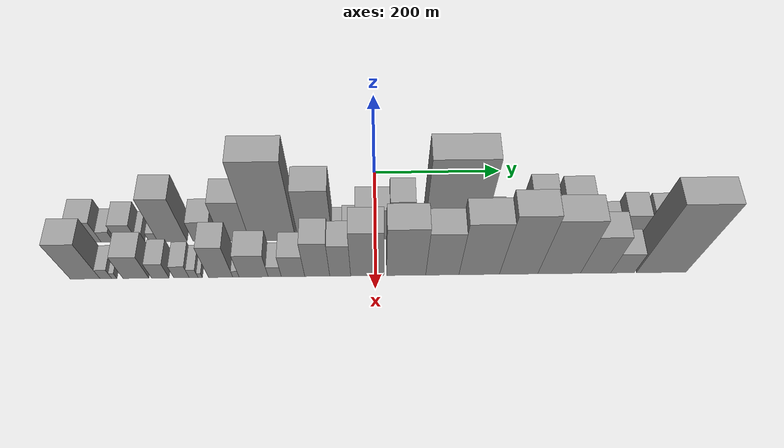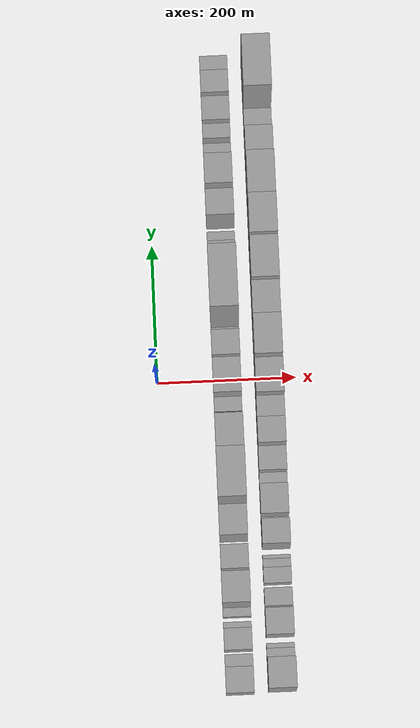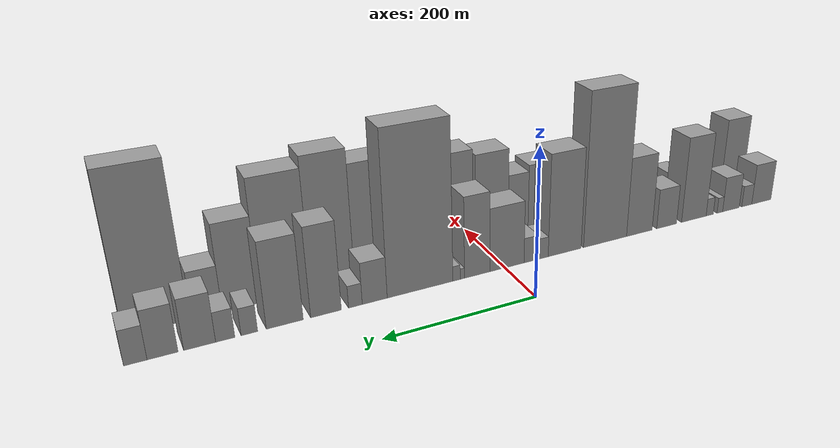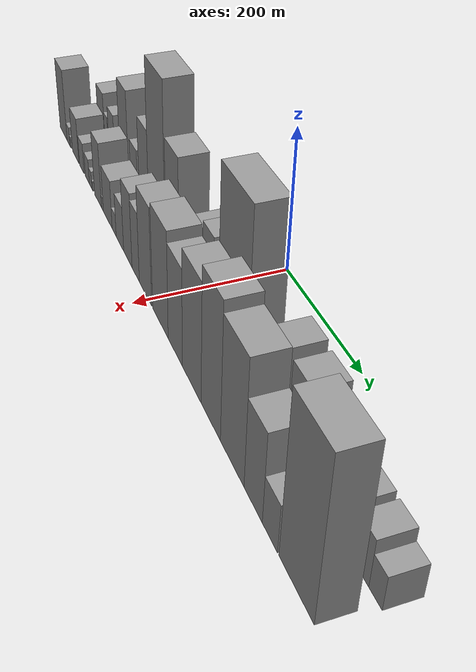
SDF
<sdf version="1.6">
 <world name="default">
  <scene>
   <sky><clouds><speed>12</speed></clouds></sky>
   <ambient>0.4 0.4 0.4 1</ambient>
   <background>0.7 0.7 0.7 1</background>
   <shadows>1</shadows>
  </scene>
  <gravity>0 0 -9.8066</gravity>
  <magnetic_field>6e-06 2.3e-05 -4.2e-05</magnetic_field>
  <physics default="0" name="default_physics" type="ode">
   <ode>
    <solver>
     <type>quick</type>
     <iters>10</iters>
     <sor>1.0</sor>
     <use_dynamic_moi_rescaling>0</use_dynamic_moi_rescaling>
    </solver>
    <constraints>
     <cfm>0</cfm>
     <erp>0.2</erp>
     <contact_max_correcting_vel>100</contact_max_correcting_vel>
     <contact_surface_layer>0.001</contact_surface_layer>
    </constraints>
   </ode>
   <max_step_size>0.004</max_step_size>
   <real_time_factor>1</real_time_factor>
   <real_time_update_rate>250</real_time_update_rate>
  </physics>
  <light name="sun" type="directional">
   <pose>0 0 10 0 0 0</pose>
   <diffuse>0.8 0.8 0.8 1</diffuse>
   <specular>0.2 0.2 0.2 1</specular>
   <attenuation>
    <range>1000</range>
    <constant>0.9</constant>
    <linear>0.01</linear>
    <quadratic>0.001</quadratic>
   </attenuation>
   <direction>-0.5 0.1 -0.9</direction>
  </light>
  <model name="building_1">
   <static>1</static>
   <pose>100.0000 -434.3449 0 0.000000 0.000000 0.000000</pose>
   <link name="link">
    <pose>0 0 31.50 0 0 0</pose>
    <collision name="collision"><geometry><box><size>40.0000 37.3102 63.0000</size></box></geometry></collision>
    <visual name="visual">
     <cast_shadows>0</cast_shadows>
     <geometry><box><size>40.0000 37.3102 63.0000</size></box></geometry>
     <material>
      <script>
       <uri>model://grey_wall/materials/scripts</uri>
       <uri>model://grey_wall/materials/textures</uri>
       <name>vrc/grey_wall</name>
      </script>
     </material>
    </visual>
   </link>
  </model>
  <model name="building_2">
   <static>1</static>
   <pose>100.0000 -406.1732 0 0.000000 0.000000 0.000000</pose>
   <link name="link">
    <pose>0 0 16.50 0 0 0</pose>
    <collision name="collision"><geometry><box><size>40.0000 19.0332 33.0000</size></box></geometry></collision>
    <visual name="visual">
     <cast_shadows>0</cast_shadows>
     <geometry><box><size>40.0000 19.0332 33.0000</size></box></geometry>
     <material>
      <script>
       <uri>model://grey_wall/materials/scripts</uri>
       <uri>model://grey_wall/materials/textures</uri>
       <name>vrc/grey_wall</name>
      </script>
     </material>
    </visual>
   </link>
  </model>
  <model name="building_3">
   <static>1</static>
   <pose>100.0000 -376.0543 0 0.000000 0.000000 0.000000</pose>
   <link name="link">
    <pose>0 0 27.00 0 0 0</pose>
    <collision name="collision"><geometry><box><size>40.0000 31.2046 54.0000</size></box></geometry></collision>
    <visual name="visual">
     <cast_shadows>0</cast_shadows>
     <geometry><box><size>40.0000 31.2046 54.0000</size></box></geometry>
     <material>
      <script>
       <uri>model://grey_wall/materials/scripts</uri>
       <uri>model://grey_wall/materials/textures</uri>
       <name>vrc/grey_wall</name>
      </script>
     </material>
    </visual>
   </link>
  </model>
  <model name="building_4">
   <static>1</static>
   <pose>100.0000 -355.2624 0 0.000000 0.000000 0.000000</pose>
   <link name="link">
    <pose>0 0 12.00 0 0 0</pose>
    <collision name="collision"><geometry><box><size>40.0000 10.3794 24.0000</size></box></geometry></collision>
    <visual name="visual">
     <cast_shadows>0</cast_shadows>
     <geometry><box><size>40.0000 10.3794 24.0000</size></box></geometry>
     <material>
      <script>
       <uri>model://grey_wall/materials/scripts</uri>
       <uri>model://grey_wall/materials/textures</uri>
       <name>vrc/grey_wall</name>
      </script>
     </material>
    </visual>
   </link>
  </model>
  <model name="building_5">
   <static>1</static>
   <pose>100.0000 -336.4891 0 0.000000 0.000000 0.000000</pose>
   <link name="link">
    <pose>0 0 13.50 0 0 0</pose>
    <collision name="collision"><geometry><box><size>40.0000 13.1672 27.0000</size></box></geometry></collision>
    <visual name="visual">
     <cast_shadows>0</cast_shadows>
     <geometry><box><size>40.0000 13.1672 27.0000</size></box></geometry>
     <material>
      <script>
       <uri>model://grey_wall/materials/scripts</uri>
       <uri>model://grey_wall/materials/textures</uri>
       <name>vrc/grey_wall</name>
      </script>
     </material>
    </visual>
   </link>
  </model>
  <model name="building_6">
   <static>1</static>
   <pose>100.0000 -307.7441 0 0.000000 0.000000 0.000000</pose>
   <link name="link">
    <pose>0 0 64.50 0 0 0</pose>
    <collision name="collision"><geometry><box><size>40.0000 44.3227 129.0000</size></box></geometry></collision>
    <visual name="visual">
     <cast_shadows>0</cast_shadows>
     <geometry><box><size>40.0000 44.3227 129.0000</size></box></geometry>
     <material>
      <script>
       <uri>model://grey_wall/materials/scripts</uri>
       <uri>model://grey_wall/materials/textures</uri>
       <name>vrc/grey_wall</name>
      </script>
     </material>
    </visual>
   </link>
  </model>
  <model name="building_7">
   <static>1</static>
   <pose>100.0000 -259.3126 0 0.000000 0.000000 0.000000</pose>
   <link name="link">
    <pose>0 0 30.00 0 0 0</pose>
    <collision name="collision"><geometry><box><size>40.0000 34.5403 60.0000</size></box></geometry></collision>
    <visual name="visual">
     <cast_shadows>0</cast_shadows>
     <geometry><box><size>40.0000 34.5403 60.0000</size></box></geometry>
     <material>
      <script>
       <uri>model://grey_wall/materials/scripts</uri>
       <uri>model://grey_wall/materials/textures</uri>
       <name>vrc/grey_wall</name>
      </script>
     </material>
    </visual>
   </link>
  </model>
  <model name="building_8">
   <static>1</static>
   <pose>100.0000 -212.3424 0 0.000000 0.000000 0.000000</pose>
   <link name="link">
    <pose>0 0 58.50 0 0 0</pose>
    <collision name="collision"><geometry><box><size>40.0000 43.4000 117.0000</size></box></geometry></collision>
    <visual name="visual">
     <cast_shadows>0</cast_shadows>
     <geometry><box><size>40.0000 43.4000 117.0000</size></box></geometry>
     <material>
      <script>
       <uri>model://grey_wall/materials/scripts</uri>
       <uri>model://grey_wall/materials/textures</uri>
       <name>vrc/grey_wall</name>
      </script>
     </material>
    </visual>
   </link>
  </model>
  <model name="building_9">
   <static>1</static>
   <pose>100.0000 -155.5357 0 0.000000 0.000000 0.000000</pose>
   <link name="link">
    <pose>0 0 111.00 0 0 0</pose>
    <collision name="collision"><geometry><box><size>40.0000 70.2134 222.0000</size></box></geometry></collision>
    <visual name="visual">
     <cast_shadows>0</cast_shadows>
     <geometry><box><size>40.0000 70.2134 222.0000</size></box></geometry>
     <material>
      <script>
       <uri>model://grey_wall/materials/scripts</uri>
       <uri>model://grey_wall/materials/textures</uri>
       <name>vrc/grey_wall</name>
      </script>
     </material>
    </visual>
   </link>
  </model>
  <model name="building_10">
   <static>1</static>
   <pose>100.0000 -90.7002 0 0.000000 0.000000 0.000000</pose>
   <link name="link">
    <pose>0 0 73.50 0 0 0</pose>
    <collision name="collision"><geometry><box><size>40.0000 51.4577 147.0000</size></box></geometry></collision>
    <visual name="visual">
     <cast_shadows>0</cast_shadows>
     <geometry><box><size>40.0000 51.4577 147.0000</size></box></geometry>
     <material>
      <script>
       <uri>model://grey_wall/materials/scripts</uri>
       <uri>model://grey_wall/materials/textures</uri>
       <name>vrc/grey_wall</name>
      </script>
     </material>
    </visual>
   </link>
  </model>
  <model name="building_11">
   <static>1</static>
   <pose>100.0000 -57.3428 0 0.000000 0.000000 0.000000</pose>
   <link name="link">
    <pose>0 0 15.00 0 0 0</pose>
    <collision name="collision"><geometry><box><size>40.0000 15.2571 30.0000</size></box></geometry></collision>
    <visual name="visual">
     <cast_shadows>0</cast_shadows>
     <geometry><box><size>40.0000 15.2571 30.0000</size></box></geometry>
     <material>
      <script>
       <uri>model://grey_wall/materials/scripts</uri>
       <uri>model://grey_wall/materials/textures</uri>
       <name>vrc/grey_wall</name>
      </script>
     </material>
    </visual>
   </link>
  </model>
  <model name="building_12">
   <static>1</static>
   <pose>100.0000 -38.9881 0 0.000000 0.000000 0.000000</pose>
   <link name="link">
    <pose>0 0 18.00 0 0 0</pose>
    <collision name="collision"><geometry><box><size>40.0000 21.4522 36.0000</size></box></geometry></collision>
    <visual name="visual">
     <cast_shadows>0</cast_shadows>
     <geometry><box><size>40.0000 21.4522 36.0000</size></box></geometry>
     <material>
      <script>
       <uri>model://grey_wall/materials/scripts</uri>
       <uri>model://grey_wall/materials/textures</uri>
       <name>vrc/grey_wall</name>
      </script>
     </material>
    </visual>
   </link>
  </model>
  <model name="building_13">
   <static>1</static>
   <pose>100.0000 -3.1126 0 0.000000 0.000000 0.000000</pose>
   <link name="link">
    <pose>0 0 45.00 0 0 0</pose>
    <collision name="collision"><geometry><box><size>40.0000 50.2988 90.0000</size></box></geometry></collision>
    <visual name="visual">
     <cast_shadows>0</cast_shadows>
     <geometry><box><size>40.0000 50.2988 90.0000</size></box></geometry>
     <material>
      <script>
       <uri>model://grey_wall/materials/scripts</uri>
       <uri>model://grey_wall/materials/textures</uri>
       <name>vrc/grey_wall</name>
      </script>
     </material>
    </visual>
   </link>
  </model>
  <model name="building_14">
   <static>1</static>
   <pose>100.0000 40.1000 0 0.000000 0.000000 0.000000</pose>
   <link name="link">
    <pose>0 0 57.00 0 0 0</pose>
    <collision name="collision"><geometry><box><size>40.0000 36.1264 114.0000</size></box></geometry></collision>
    <visual name="visual">
     <cast_shadows>0</cast_shadows>
     <geometry><box><size>40.0000 36.1264 114.0000</size></box></geometry>
     <material>
      <script>
       <uri>model://grey_wall/materials/scripts</uri>
       <uri>model://grey_wall/materials/textures</uri>
       <name>vrc/grey_wall</name>
      </script>
     </material>
    </visual>
   </link>
  </model>
  <model name="building_15">
   <static>1</static>
   <pose>100.0000 61.1861 0 0.000000 0.000000 0.000000</pose>
   <link name="link">
    <pose>0 0 7.50 0 0 0</pose>
    <collision name="collision"><geometry><box><size>40.0000 6.0458 15.0000</size></box></geometry></collision>
    <visual name="visual">
     <cast_shadows>0</cast_shadows>
     <geometry><box><size>40.0000 6.0458 15.0000</size></box></geometry>
     <material>
      <script>
       <uri>model://grey_wall/materials/scripts</uri>
       <uri>model://grey_wall/materials/textures</uri>
       <name>vrc/grey_wall</name>
      </script>
     </material>
    </visual>
   </link>
  </model>
  <model name="building_16">
   <static>1</static>
   <pose>100.0000 69.3125 0 0.000000 0.000000 0.000000</pose>
   <link name="link">
    <pose>0 0 10.50 0 0 0</pose>
    <collision name="collision"><geometry><box><size>40.0000 10.2069 21.0000</size></box></geometry></collision>
    <visual name="visual">
     <cast_shadows>0</cast_shadows>
     <geometry><box><size>40.0000 10.2069 21.0000</size></box></geometry>
     <material>
      <script>
       <uri>model://grey_wall/materials/scripts</uri>
       <uri>model://grey_wall/materials/textures</uri>
       <name>vrc/grey_wall</name>
      </script>
     </material>
    </visual>
   </link>
  </model>
  <model name="building_17">
   <static>1</static>
   <pose>100.0000 118.7404 0 0.000000 0.000000 0.000000</pose>
   <link name="link">
    <pose>0 0 111.00 0 0 0</pose>
    <collision name="collision"><geometry><box><size>40.0000 88.6490 222.0000</size></box></geometry></collision>
    <visual name="visual">
     <cast_shadows>0</cast_shadows>
     <geometry><box><size>40.0000 88.6490 222.0000</size></box></geometry>
     <material>
      <script>
       <uri>model://grey_wall/materials/scripts</uri>
       <uri>model://grey_wall/materials/textures</uri>
       <name>vrc/grey_wall</name>
      </script>
     </material>
    </visual>
   </link>
  </model>
  <model name="building_18">
   <static>1</static>
   <pose>100.0000 179.1369 0 0.000000 0.000000 0.000000</pose>
   <link name="link">
    <pose>0 0 28.50 0 0 0</pose>
    <collision name="collision"><geometry><box><size>40.0000 32.1441 57.0000</size></box></geometry></collision>
    <visual name="visual">
     <cast_shadows>0</cast_shadows>
     <geometry><box><size>40.0000 32.1441 57.0000</size></box></geometry>
     <material>
      <script>
       <uri>model://grey_wall/materials/scripts</uri>
       <uri>model://grey_wall/materials/textures</uri>
       <name>vrc/grey_wall</name>
      </script>
     </material>
    </visual>
   </link>
  </model>
  <model name="building_19">
   <static>1</static>
   <pose>100.0000 203.8925 0 0.000000 0.000000 0.000000</pose>
   <link name="link">
    <pose>0 0 15.00 0 0 0</pose>
    <collision name="collision"><geometry><box><size>40.0000 17.3670 30.0000</size></box></geometry></collision>
    <visual name="visual">
     <cast_shadows>0</cast_shadows>
     <geometry><box><size>40.0000 17.3670 30.0000</size></box></geometry>
     <material>
      <script>
       <uri>model://grey_wall/materials/scripts</uri>
       <uri>model://grey_wall/materials/textures</uri>
       <name>vrc/grey_wall</name>
      </script>
     </material>
    </visual>
   </link>
  </model>
  <model name="building_20">
   <static>1</static>
   <pose>100.0000 240.4520 0 0.000000 0.000000 0.000000</pose>
   <link name="link">
    <pose>0 0 60.00 0 0 0</pose>
    <collision name="collision"><geometry><box><size>40.0000 37.7521 120.0000</size></box></geometry></collision>
    <visual name="visual">
     <cast_shadows>0</cast_shadows>
     <geometry><box><size>40.0000 37.7521 120.0000</size></box></geometry>
     <material>
      <script>
       <uri>model://grey_wall/materials/scripts</uri>
       <uri>model://grey_wall/materials/textures</uri>
       <name>vrc/grey_wall</name>
      </script>
     </material>
    </visual>
   </link>
  </model>
  <model name="building_21">
   <static>1</static>
   <pose>100.0000 290.1901 0 0.000000 0.000000 0.000000</pose>
   <link name="link">
    <pose>0 0 57.00 0 0 0</pose>
    <collision name="collision"><geometry><box><size>40.0000 43.7241 114.0000</size></box></geometry></collision>
    <visual name="visual">
     <cast_shadows>0</cast_shadows>
     <geometry><box><size>40.0000 43.7241 114.0000</size></box></geometry>
     <material>
      <script>
       <uri>model://grey_wall/materials/scripts</uri>
       <uri>model://grey_wall/materials/textures</uri>
       <name>vrc/grey_wall</name>
      </script>
     </material>
    </visual>
   </link>
  </model>
  <model name="building_22">
   <static>1</static>
   <pose>100.0000 331.5649 0 0.000000 0.000000 0.000000</pose>
   <link name="link">
    <pose>0 0 18.00 0 0 0</pose>
    <collision name="collision"><geometry><box><size>40.0000 19.0254 36.0000</size></box></geometry></collision>
    <visual name="visual">
     <cast_shadows>0</cast_shadows>
     <geometry><box><size>40.0000 19.0254 36.0000</size></box></geometry>
     <material>
      <script>
       <uri>model://grey_wall/materials/scripts</uri>
       <uri>model://grey_wall/materials/textures</uri>
       <name>vrc/grey_wall</name>
      </script>
     </material>
    </visual>
   </link>
  </model>
  <model name="building_23">
   <static>1</static>
   <pose>100.0000 358.8681 0 0.000000 0.000000 0.000000</pose>
   <link name="link">
    <pose>0 0 19.50 0 0 0</pose>
    <collision name="collision"><geometry><box><size>40.0000 21.5811 39.0000</size></box></geometry></collision>
    <visual name="visual">
     <cast_shadows>0</cast_shadows>
     <geometry><box><size>40.0000 21.5811 39.0000</size></box></geometry>
     <material>
      <script>
       <uri>model://grey_wall/materials/scripts</uri>
       <uri>model://grey_wall/materials/textures</uri>
       <name>vrc/grey_wall</name>
      </script>
     </material>
    </visual>
   </link>
  </model>
  <model name="building_24">
   <static>1</static>
   <pose>100.0000 387.1846 0 0.000000 0.000000 0.000000</pose>
   <link name="link">
    <pose>0 0 33.00 0 0 0</pose>
    <collision name="collision"><geometry><box><size>40.0000 35.0521 66.0000</size></box></geometry></collision>
    <visual name="visual">
     <cast_shadows>0</cast_shadows>
     <geometry><box><size>40.0000 35.0521 66.0000</size></box></geometry>
     <material>
      <script>
       <uri>model://grey_wall/materials/scripts</uri>
       <uri>model://grey_wall/materials/textures</uri>
       <name>vrc/grey_wall</name>
      </script>
     </material>
    </visual>
   </link>
  </model>
  <model name="building_25">
   <static>1</static>
   <pose>100.0000 427.1415 0 0.000000 0.000000 0.000000</pose>
   <link name="link">
    <pose>0 0 31.50 0 0 0</pose>
    <collision name="collision"><geometry><box><size>40.0000 32.8618 63.0000</size></box></geometry></collision>
    <visual name="visual">
     <cast_shadows>0</cast_shadows>
     <geometry><box><size>40.0000 32.8618 63.0000</size></box></geometry>
     <material>
      <script>
       <uri>model://grey_wall/materials/scripts</uri>
       <uri>model://grey_wall/materials/textures</uri>
       <name>vrc/grey_wall</name>
      </script>
     </material>
    </visual>
   </link>
  </model>
  <model name="building_26">
   <static>1</static>
   <pose>100.0000 455.7737 0 0.000000 0.000000 0.000000</pose>
   <link name="link">
    <pose>0 0 22.50 0 0 0</pose>
    <collision name="collision"><geometry><box><size>40.0000 24.4026 45.0000</size></box></geometry></collision>
    <visual name="visual">
     <cast_shadows>0</cast_shadows>
     <geometry><box><size>40.0000 24.4026 45.0000</size></box></geometry>
     <material>
      <script>
       <uri>model://grey_wall/materials/scripts</uri>
       <uri>model://grey_wall/materials/textures</uri>
       <name>vrc/grey_wall</name>
      </script>
     </material>
    </visual>
   </link>
  </model>
  <model name="building_27">
   <static>1</static>
   <pose>160.0000 -429.0702 0 0.000000 0.000000 0.000000</pose>
   <link name="link">
    <pose>0 0 57.00 0 0 0</pose>
    <collision name="collision"><geometry><box><size>40.0000 43.8596 114.0000</size></box></geometry></collision>
    <visual name="visual">
     <cast_shadows>0</cast_shadows>
     <geometry><box><size>40.0000 43.8596 114.0000</size></box></geometry>
     <material>
      <script>
       <uri>model://grey_wall/materials/scripts</uri>
       <uri>model://grey_wall/materials/textures</uri>
       <name>vrc/grey_wall</name>
      </script>
     </material>
    </visual>
   </link>
  </model>
  <model name="building_28">
   <static>1</static>
   <pose>160.0000 -398.5017 0 0.000000 0.000000 0.000000</pose>
   <link name="link">
    <pose>0 0 15.00 0 0 0</pose>
    <collision name="collision"><geometry><box><size>40.0000 17.2774 30.0000</size></box></geometry></collision>
    <visual name="visual">
     <cast_shadows>0</cast_shadows>
     <geometry><box><size>40.0000 17.2774 30.0000</size></box></geometry>
     <material>
      <script>
       <uri>model://grey_wall/materials/scripts</uri>
       <uri>model://grey_wall/materials/textures</uri>
       <name>vrc/grey_wall</name>
      </script>
     </material>
    </visual>
   </link>
  </model>
  <model name="building_29">
   <static>1</static>
   <pose>160.0000 -386.0668 0 0.000000 0.000000 0.000000</pose>
   <link name="link">
    <pose>0 0 9.00 0 0 0</pose>
    <collision name="collision"><geometry><box><size>40.0000 7.5922 18.0000</size></box></geometry></collision>
    <visual name="visual">
     <cast_shadows>0</cast_shadows>
     <geometry><box><size>40.0000 7.5922 18.0000</size></box></geometry>
     <material>
      <script>
       <uri>model://grey_wall/materials/scripts</uri>
       <uri>model://grey_wall/materials/textures</uri>
       <name>vrc/grey_wall</name>
      </script>
     </material>
    </visual>
   </link>
  </model>
  <model name="building_30">
   <static>1</static>
   <pose>160.0000 -354.2220 0 0.000000 0.000000 0.000000</pose>
   <link name="link">
    <pose>0 0 36.00 0 0 0</pose>
    <collision name="collision"><geometry><box><size>40.0000 38.0973 72.0000</size></box></geometry></collision>
    <visual name="visual">
     <cast_shadows>0</cast_shadows>
     <geometry><box><size>40.0000 38.0973 72.0000</size></box></geometry>
     <material>
      <script>
       <uri>model://grey_wall/materials/scripts</uri>
       <uri>model://grey_wall/materials/textures</uri>
       <name>vrc/grey_wall</name>
      </script>
     </material>
    </visual>
   </link>
  </model>
  <model name="building_31">
   <static>1</static>
   <pose>160.0000 -318.2275 0 0.000000 0.000000 0.000000</pose>
   <link name="link">
    <pose>0 0 24.00 0 0 0</pose>
    <collision name="collision"><geometry><box><size>40.0000 25.8917 48.0000</size></box></geometry></collision>
    <visual name="visual">
     <cast_shadows>0</cast_shadows>
     <geometry><box><size>40.0000 25.8917 48.0000</size></box></geometry>
     <material>
      <script>
       <uri>model://grey_wall/materials/scripts</uri>
       <uri>model://grey_wall/materials/textures</uri>
       <name>vrc/grey_wall</name>
      </script>
     </material>
    </visual>
   </link>
  </model>
  <model name="building_32">
   <static>1</static>
   <pose>160.0000 -286.8710 0 0.000000 0.000000 0.000000</pose>
   <link name="link">
    <pose>0 0 19.50 0 0 0</pose>
    <collision name="collision"><geometry><box><size>40.0000 22.8214 39.0000</size></box></geometry></collision>
    <visual name="visual">
     <cast_shadows>0</cast_shadows>
     <geometry><box><size>40.0000 22.8214 39.0000</size></box></geometry>
     <material>
      <script>
       <uri>model://grey_wall/materials/scripts</uri>
       <uri>model://grey_wall/materials/textures</uri>
       <name>vrc/grey_wall</name>
      </script>
     </material>
    </visual>
   </link>
  </model>
  <model name="building_33">
   <static>1</static>
   <pose>160.0000 -268.9408 0 0.000000 0.000000 0.000000</pose>
   <link name="link">
    <pose>0 0 13.50 0 0 0</pose>
    <collision name="collision"><geometry><box><size>40.0000 13.0389 27.0000</size></box></geometry></collision>
    <visual name="visual">
     <cast_shadows>0</cast_shadows>
     <geometry><box><size>40.0000 13.0389 27.0000</size></box></geometry>
     <material>
      <script>
       <uri>model://grey_wall/materials/scripts</uri>
       <uri>model://grey_wall/materials/textures</uri>
       <name>vrc/grey_wall</name>
      </script>
     </material>
    </visual>
   </link>
  </model>
  <model name="building_34">
   <static>1</static>
   <pose>160.0000 -259.2228 0 0.000000 0.000000 0.000000</pose>
   <link name="link">
    <pose>0 0 7.50 0 0 0</pose>
    <collision name="collision"><geometry><box><size>40.0000 6.3972 15.0000</size></box></geometry></collision>
    <visual name="visual">
     <cast_shadows>0</cast_shadows>
     <geometry><box><size>40.0000 6.3972 15.0000</size></box></geometry>
     <material>
      <script>
       <uri>model://grey_wall/materials/scripts</uri>
       <uri>model://grey_wall/materials/textures</uri>
       <name>vrc/grey_wall</name>
      </script>
     </material>
    </visual>
   </link>
  </model>
  <model name="building_35">
   <static>1</static>
   <pose>160.0000 -229.0551 0 0.000000 0.000000 0.000000</pose>
   <link name="link">
    <pose>0 0 49.50 0 0 0</pose>
    <collision name="collision"><geometry><box><size>40.0000 35.9382 99.0000</size></box></geometry></collision>
    <visual name="visual">
     <cast_shadows>0</cast_shadows>
     <geometry><box><size>40.0000 35.9382 99.0000</size></box></geometry>
     <material>
      <script>
       <uri>model://grey_wall/materials/scripts</uri>
       <uri>model://grey_wall/materials/textures</uri>
       <name>vrc/grey_wall</name>
      </script>
     </material>
    </visual>
   </link>
  </model>
  <model name="building_36">
   <static>1</static>
   <pose>160.0000 -206.4405 0 0.000000 0.000000 0.000000</pose>
   <link name="link">
    <pose>0 0 10.50 0 0 0</pose>
    <collision name="collision"><geometry><box><size>40.0000 9.2910 21.0000</size></box></geometry></collision>
    <visual name="visual">
     <cast_shadows>0</cast_shadows>
     <geometry><box><size>40.0000 9.2910 21.0000</size></box></geometry>
     <material>
      <script>
       <uri>model://grey_wall/materials/scripts</uri>
       <uri>model://grey_wall/materials/textures</uri>
       <name>vrc/grey_wall</name>
      </script>
     </material>
    </visual>
   </link>
  </model>
  <model name="building_37">
   <static>1</static>
   <pose>160.0000 -180.2395 0 0.000000 0.000000 0.000000</pose>
   <link name="link">
    <pose>0 0 36.00 0 0 0</pose>
    <collision name="collision"><geometry><box><size>40.0000 43.1109 72.0000</size></box></geometry></collision>
    <visual name="visual">
     <cast_shadows>0</cast_shadows>
     <geometry><box><size>40.0000 43.1109 72.0000</size></box></geometry>
     <material>
      <script>
       <uri>model://grey_wall/materials/scripts</uri>
       <uri>model://grey_wall/materials/textures</uri>
       <name>vrc/grey_wall</name>
      </script>
     </material>
    </visual>
   </link>
  </model>
  <model name="building_38">
   <static>1</static>
   <pose>160.0000 -149.0144 0 0.000000 0.000000 0.000000</pose>
   <link name="link">
    <pose>0 0 16.50 0 0 0</pose>
    <collision name="collision"><geometry><box><size>40.0000 19.3393 33.0000</size></box></geometry></collision>
    <visual name="visual">
     <cast_shadows>0</cast_shadows>
     <geometry><box><size>40.0000 19.3393 33.0000</size></box></geometry>
     <material>
      <script>
       <uri>model://grey_wall/materials/scripts</uri>
       <uri>model://grey_wall/materials/textures</uri>
       <name>vrc/grey_wall</name>
      </script>
     </material>
    </visual>
   </link>
  </model>
  <model name="building_39">
   <static>1</static>
   <pose>160.0000 -122.0366 0 0.000000 0.000000 0.000000</pose>
   <link name="link">
    <pose>0 0 33.00 0 0 0</pose>
    <collision name="collision"><geometry><box><size>40.0000 34.6164 66.0000</size></box></geometry></collision>
    <visual name="visual">
     <cast_shadows>0</cast_shadows>
     <geometry><box><size>40.0000 34.6164 66.0000</size></box></geometry>
     <material>
      <script>
       <uri>model://grey_wall/materials/scripts</uri>
       <uri>model://grey_wall/materials/textures</uri>
       <name>vrc/grey_wall</name>
      </script>
     </material>
    </visual>
   </link>
  </model>
  <model name="building_40">
   <static>1</static>
   <pose>160.0000 -86.2194 0 0.000000 0.000000 0.000000</pose>
   <link name="link">
    <pose>0 0 54.00 0 0 0</pose>
    <collision name="collision"><geometry><box><size>40.0000 37.0180 108.0000</size></box></geometry></collision>
    <visual name="visual">
     <cast_shadows>0</cast_shadows>
     <geometry><box><size>40.0000 37.0180 108.0000</size></box></geometry>
     <material>
      <script>
       <uri>model://grey_wall/materials/scripts</uri>
       <uri>model://grey_wall/materials/textures</uri>
       <name>vrc/grey_wall</name>
      </script>
     </material>
    </visual>
   </link>
  </model>
  <model name="building_41">
   <static>1</static>
   <pose>160.0000 -52.2447 0 0.000000 0.000000 0.000000</pose>
   <link name="link">
    <pose>0 0 49.50 0 0 0</pose>
    <collision name="collision"><geometry><box><size>40.0000 30.9315 99.0000</size></box></geometry></collision>
    <visual name="visual">
     <cast_shadows>0</cast_shadows>
     <geometry><box><size>40.0000 30.9315 99.0000</size></box></geometry>
     <material>
      <script>
       <uri>model://grey_wall/materials/scripts</uri>
       <uri>model://grey_wall/materials/textures</uri>
       <name>vrc/grey_wall</name>
      </script>
     </material>
    </visual>
   </link>
  </model>
  <model name="building_42">
   <static>1</static>
   <pose>160.0000 -12.1193 0 0.000000 0.000000 0.000000</pose>
   <link name="link">
    <pose>0 0 69.00 0 0 0</pose>
    <collision name="collision"><geometry><box><size>40.0000 49.3192 138.0000</size></box></geometry></collision>
    <visual name="visual">
     <cast_shadows>0</cast_shadows>
     <geometry><box><size>40.0000 49.3192 138.0000</size></box></geometry>
     <material>
      <script>
       <uri>model://grey_wall/materials/scripts</uri>
       <uri>model://grey_wall/materials/textures</uri>
       <name>vrc/grey_wall</name>
      </script>
     </material>
    </visual>
   </link>
  </model>
  <model name="building_43">
   <static>1</static>
   <pose>160.0000 45.4589 0 0.000000 0.000000 0.000000</pose>
   <link name="link">
    <pose>0 0 73.50 0 0 0</pose>
    <collision name="collision"><geometry><box><size>40.0000 57.8371 147.0000</size></box></geometry></collision>
    <visual name="visual">
     <cast_shadows>0</cast_shadows>
     <geometry><box><size>40.0000 57.8371 147.0000</size></box></geometry>
     <material>
      <script>
       <uri>model://grey_wall/materials/scripts</uri>
       <uri>model://grey_wall/materials/textures</uri>
       <name>vrc/grey_wall</name>
      </script>
     </material>
    </visual>
   </link>
  </model>
  <model name="building_44">
   <static>1</static>
   <pose>160.0000 99.0367 0 0.000000 0.000000 0.000000</pose>
   <link name="link">
    <pose>0 0 66.00 0 0 0</pose>
    <collision name="collision"><geometry><box><size>40.0000 49.3185 132.0000</size></box></geometry></collision>
    <visual name="visual">
     <cast_shadows>0</cast_shadows>
     <geometry><box><size>40.0000 49.3185 132.0000</size></box></geometry>
     <material>
      <script>
       <uri>model://grey_wall/materials/scripts</uri>
       <uri>model://grey_wall/materials/textures</uri>
       <name>vrc/grey_wall</name>
      </script>
     </material>
    </visual>
   </link>
  </model>
  <model name="building_45">
   <static>1</static>
   <pose>160.0000 153.7312 0 0.000000 0.000000 0.000000</pose>
   <link name="link">
    <pose>0 0 79.50 0 0 0</pose>
    <collision name="collision"><geometry><box><size>40.0000 60.0704 159.0000</size></box></geometry></collision>
    <visual name="visual">
     <cast_shadows>0</cast_shadows>
     <geometry><box><size>40.0000 60.0704 159.0000</size></box></geometry>
     <material>
      <script>
       <uri>model://grey_wall/materials/scripts</uri>
       <uri>model://grey_wall/materials/textures</uri>
       <name>vrc/grey_wall</name>
      </script>
     </material>
    </visual>
   </link>
  </model>
  <model name="building_46">
   <static>1</static>
   <pose>160.0000 212.2501 0 0.000000 0.000000 0.000000</pose>
   <link name="link">
    <pose>0 0 90.00 0 0 0</pose>
    <collision name="collision"><geometry><box><size>40.0000 56.9674 180.0000</size></box></geometry></collision>
    <visual name="visual">
     <cast_shadows>0</cast_shadows>
     <geometry><box><size>40.0000 56.9674 180.0000</size></box></geometry>
     <material>
      <script>
       <uri>model://grey_wall/materials/scripts</uri>
       <uri>model://grey_wall/materials/textures</uri>
       <name>vrc/grey_wall</name>
      </script>
     </material>
    </visual>
   </link>
  </model>
  <model name="building_47">
   <static>1</static>
   <pose>160.0000 272.5267 0 0.000000 0.000000 0.000000</pose>
   <link name="link">
    <pose>0 0 82.50 0 0 0</pose>
    <collision name="collision"><geometry><box><size>40.0000 63.5858 165.0000</size></box></geometry></collision>
    <visual name="visual">
     <cast_shadows>0</cast_shadows>
     <geometry><box><size>40.0000 63.5858 165.0000</size></box></geometry>
     <material>
      <script>
       <uri>model://grey_wall/materials/scripts</uri>
       <uri>model://grey_wall/materials/textures</uri>
       <name>vrc/grey_wall</name>
      </script>
     </material>
    </visual>
   </link>
  </model>
  <model name="building_48">
   <static>1</static>
   <pose>160.0000 326.8325 0 0.000000 0.000000 0.000000</pose>
   <link name="link">
    <pose>0 0 58.50 0 0 0</pose>
    <collision name="collision"><geometry><box><size>40.0000 45.0258 117.0000</size></box></geometry></collision>
    <visual name="visual">
     <cast_shadows>0</cast_shadows>
     <geometry><box><size>40.0000 45.0258 117.0000</size></box></geometry>
     <material>
      <script>
       <uri>model://grey_wall/materials/scripts</uri>
       <uri>model://grey_wall/materials/textures</uri>
       <name>vrc/grey_wall</name>
      </script>
     </material>
    </visual>
   </link>
  </model>
  <model name="building_49">
   <static>1</static>
   <pose>160.0000 366.9252 0 0.000000 0.000000 0.000000</pose>
   <link name="link">
    <pose>0 0 31.50 0 0 0</pose>
    <collision name="collision"><geometry><box><size>40.0000 35.1597 63.0000</size></box></geometry></collision>
    <visual name="visual">
     <cast_shadows>0</cast_shadows>
     <geometry><box><size>40.0000 35.1597 63.0000</size></box></geometry>
     <material>
      <script>
       <uri>model://grey_wall/materials/scripts</uri>
       <uri>model://grey_wall/materials/textures</uri>
       <name>vrc/grey_wall</name>
      </script>
     </material>
    </visual>
   </link>
  </model>
  <model name="building_50">
   <static>1</static>
   <pose>160.0000 424.5085 0 0.000000 0.000000 0.000000</pose>
   <link name="link">
    <pose>0 0 103.50 0 0 0</pose>
    <collision name="collision"><geometry><box><size>40.0000 74.0069 207.0000</size></box></geometry></collision>
    <visual name="visual">
     <cast_shadows>0</cast_shadows>
     <geometry><box><size>40.0000 74.0069 207.0000</size></box></geometry>
     <material>
      <script>
       <uri>model://grey_wall/materials/scripts</uri>
       <uri>model://grey_wall/materials/textures</uri>
       <name>vrc/grey_wall</name>
      </script>
     </material>
    </visual>
   </link>
  </model>
 </world>
</sdf>
